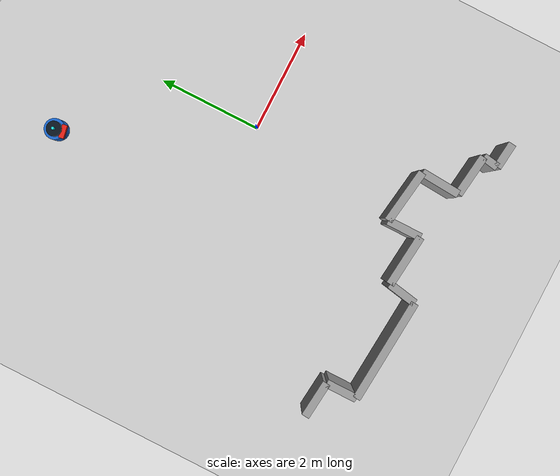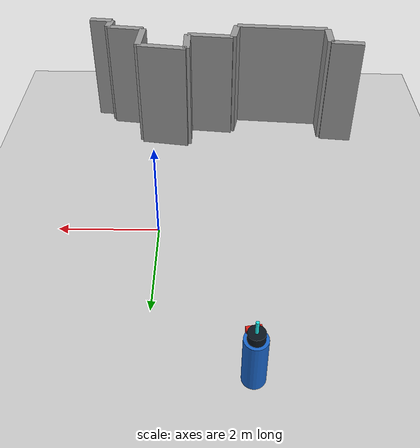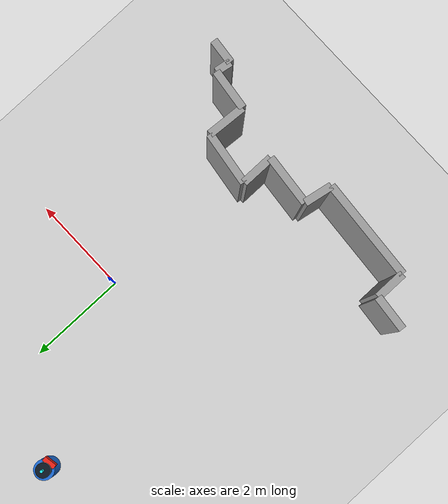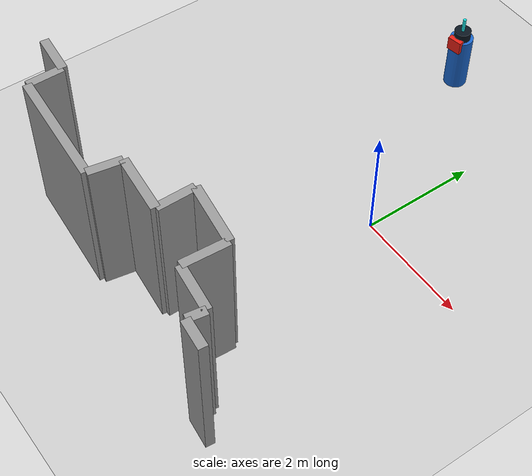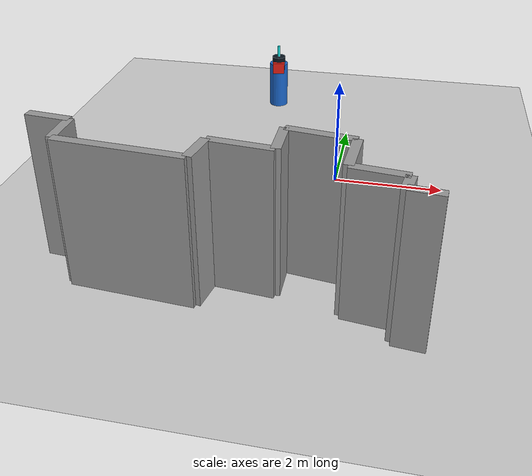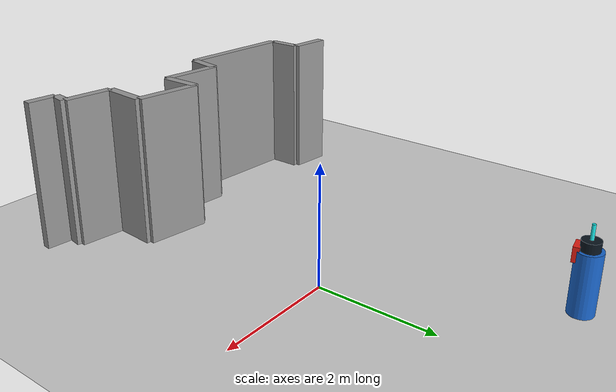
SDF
<sdf version="1.7">
 <world name="default">
  <plugin name="socnav_plugin" filename="libSocNavPlugin.so">
   <robot_name>robot</robot_name>
   <trajectory_file>/home/hunav_gz_classic_ws/SocNav3_trajectories/src3/000001087.json</trajectory_file>
   <human_slots>3</human_slots>
  </plugin>
  <light name="sun" type="directional">
   <pose>0 0 10 0 -0 0</pose>
   <diffuse>0.8 0.8 0.8 1</diffuse>
   <specular>0.2 0.2 0.2 1</specular>
   <attenuation>
    <range>1000</range>
    <constant>0.9</constant>
    <linear>0.01</linear>
    <quadratic>0.001</quadratic>
   </attenuation>
   <direction>-0.5 0.1 -0.9</direction>
   <spot><inner_angle>0</inner_angle><outer_angle>0</outer_angle><falloff>0</falloff></spot>
  </light>
  <model name="ground_plane">
   <static>1</static>
   <link name="link">
    <collision name="collision">
     <geometry><plane><normal>0 0 1</normal><size>100 100</size></plane></geometry>
     <surface><friction><ode><mu>100</mu><mu2>50</mu2></ode></friction></surface>
    </collision>
    <visual name="visual">
     <cast_shadows>0</cast_shadows>
     <geometry><plane><normal>0 0 1</normal><size>100 100</size></plane></geometry>
     <material>
      <script><uri>file://media/materials/scripts/kitchen.material</uri><name>Kitchen/CounterTop_H</name></script>
     </material>
    </visual>
   </link>
  </model>
  <gravity>0 0 -9.8</gravity>
  <magnetic_field>6e-06 2.3e-05 -4.2e-05</magnetic_field>
  <atmosphere type="adiabatic"/>
  <physics type="ode">
   <max_step_size>0.001</max_step_size>
   <real_time_factor>1</real_time_factor>
   <real_time_update_rate>1000</real_time_update_rate>
  </physics>
  <scene><ambient>0.4 0.4 0.4 1</ambient><background>0.7 0.7 0.7 1</background><shadows>1</shadows></scene>
  <audio><device>default</device></audio>
  <spherical_coordinates>
   <surface_model>EARTH_WGS84</surface_model>
   <latitude_deg>0</latitude_deg>
   <longitude_deg>0</longitude_deg>
   <elevation>0</elevation>
   <heading_deg>0</heading_deg>
  </spherical_coordinates>
  <model name="robot">
   <pose>-1.751194847550667 3.312082154825214 0.5 0 0 -1.4043498034513395</pose>
   <link name="link">
    <collision name="collision">
     <geometry><cylinder><radius>0.2</radius><length>1.0</length></cylinder></geometry>
    </collision>
    <visual name="visual">
     <geometry><cylinder><radius>0.2</radius><length>1.0</length></cylinder></geometry>
     <material><ambient>0.1 0.4 0.8 1</ambient><diffuse>0.1 0.4 0.8 1</diffuse></material>
    </visual>
    <visual name="robot_top">
     <pose>0 0 0.58 0 0 0</pose>
     <geometry><cylinder><radius>0.144</radius><length>0.16</length></cylinder></geometry>
     <material><ambient>0.04 0.08 0.12 1</ambient><diffuse>0.04 0.08 0.12 1</diffuse></material>
    </visual>
    <visual name="robot_front">
     <pose>0.168 0 0.44 0 0 0</pose>
     <geometry><box><size>0.096 0.256 0.24</size></box></geometry>
     <material><ambient>0.9 0.12 0.08 1</ambient><diffuse>0.9 0.12 0.08 1</diffuse></material>
    </visual>
    <visual name="robot_sensor">
     <pose>0 0 0.78 0 0 0</pose>
     <geometry><cylinder><radius>0.028000000000000004</radius><length>0.24</length></cylinder></geometry>
     <material><ambient>0.1 0.9 0.9 1</ambient><diffuse>0.1 0.9 0.9 1</diffuse></material>
    </visual>
   </link>
  </model>
  <model name="simple_world_test">
   <link name="Wall_0">
    <collision name="Wall_0_Collision">
     <geometry><box><size>0.7076985437023052 0.15 2.5</size></box></geometry>
     <pose>0 0 1.25 0 -0 0</pose>
    </collision>
    <visual name="Wall_0_Visual">
     <pose>0 0 1.25 0 -0 0</pose>
     <geometry><box><size>0.7076985437023052 0.15 2.5</size></box></geometry>
     <material>
      <script><uri>file://media/materials/scripts/gazebo.material</uri><name>Gazebo/Grey</name></script>
      <ambient>1 1 1 1</ambient>
     </material>
     <meta><layer>0</layer></meta>
    </visual>
    <pose>-3.9153914659265596 -3.2307504617910503 0 0 -0 -0.0996686524911619</pose>
   </link>
   <link name="Wall_1">
    <collision name="Wall_1_Collision">
     <geometry><box><size>0.6000000000000001 0.15 2.5</size></box></geometry>
     <pose>0 0 1.25 0 -0 0</pose>
    </collision>
    <visual name="Wall_1_Visual">
     <pose>0 0 1.25 0 -0 0</pose>
     <geometry><box><size>0.6000000000000001 0.15 2.5</size></box></geometry>
     <material>
      <script><uri>file://media/materials/scripts/gazebo.material</uri><name>Gazebo/Grey</name></script>
      <ambient>1 1 1 1</ambient>
     </material>
     <meta><layer>0</layer></meta>
    </visual>
    <pose>-3.563298280705938 -3.5659597803131122 0 0 -0 -1.5707963267948966</pose>
   </link>
   <link name="Wall_2">
    <collision name="Wall_2_Collision">
     <geometry><box><size>2.005617112013158 0.15 2.5</size></box></geometry>
     <pose>0 0 1.25 0 -0 0</pose>
    </collision>
    <visual name="Wall_2_Visual">
     <pose>0 0 1.25 0 -0 0</pose>
     <geometry><box><size>2.005617112013158 0.15 2.5</size></box></geometry>
     <material>
      <script><uri>file://media/materials/scripts/gazebo.material</uri><name>Gazebo/Grey</name></script>
      <ambient>1 1 1 1</ambient>
     </material>
     <meta><layer>0</layer></meta>
    </visual>
    <pose>-2.563298280705938 -3.9409597803131122 0 0 -0 -0.07485984771076681</pose>
   </link>
   <link name="Wall_3">
    <collision name="Wall_3_Collision">
     <geometry><box><size>0.5590169943749472 0.15 2.5</size></box></geometry>
     <pose>0 0 1.25 0 -0 0</pose>
    </collision>
    <visual name="Wall_3_Visual">
     <pose>0 0 1.25 0 -0 0</pose>
     <geometry><box><size>0.5590169943749472 0.15 2.5</size></box></geometry>
     <material>
      <script><uri>file://media/materials/scripts/gazebo.material</uri><name>Gazebo/Grey</name></script>
      <ambient>1 1 1 1</ambient>
     </material>
     <meta><layer>0</layer></meta>
    </visual>
    <pose>-1.5132982807059383 -3.7409597803131125 0 0 -0 1.390942827002419</pose>
   </link>
   <link name="Wall_4">
    <collision name="Wall_4_Collision">
     <geometry><box><size>1.004987562112089 0.15 2.5</size></box></geometry>
     <pose>0 0 1.25 0 -0 0</pose>
    </collision>
    <visual name="Wall_4_Visual">
     <pose>0 0 1.25 0 -0 0</pose>
     <geometry><box><size>1.004987562112089 0.15 2.5</size></box></geometry>
     <material>
      <script><uri>file://media/materials/scripts/gazebo.material</uri><name>Gazebo/Grey</name></script>
      <ambient>1 1 1 1</ambient>
     </material>
     <meta><layer>0</layer></meta>
    </visual>
    <pose>-0.9632982807059385 -3.5159597803131124 0 0 -0 -0.09966865249116212</pose>
   </link>
   <link name="Wall_5">
    <collision name="Wall_5_Collision">
     <geometry><box><size>0.6499999999999999 0.15 2.5</size></box></geometry>
     <pose>0 0 1.25 0 -0 0</pose>
    </collision>
    <visual name="Wall_5_Visual">
     <pose>0 0 1.25 0 -0 0</pose>
     <geometry><box><size>0.6499999999999999 0.15 2.5</size></box></geometry>
     <material>
      <script><uri>file://media/materials/scripts/gazebo.material</uri><name>Gazebo/Grey</name></script>
      <ambient>1 1 1 1</ambient>
     </material>
     <meta><layer>0</layer></meta>
    </visual>
    <pose>-0.4632982807059385 -3.240959780313113 0 0 -0 1.5707963267948966</pose>
   </link>
   <link name="Wall_6">
    <collision name="Wall_6_Collision">
     <geometry><box><size>1.0606601717798214 0.15 2.5</size></box></geometry>
     <pose>0 0 1.25 0 -0 0</pose>
    </collision>
    <visual name="Wall_6_Visual">
     <pose>0 0 1.25 0 -0 0</pose>
     <geometry><box><size>1.0606601717798214 0.15 2.5</size></box></geometry>
     <material>
      <script><uri>file://media/materials/scripts/gazebo.material</uri><name>Gazebo/Grey</name></script>
      <ambient>1 1 1 1</ambient>
     </material>
     <meta><layer>0</layer></meta>
    </visual>
    <pose>0.06170171929406165 -2.990959780313113 0 0 -0 -0.1418970546041638</pose>
   </link>
   <link name="Wall_7">
    <collision name="Wall_7_Collision">
     <geometry><box><size>0.7516648189186454 0.15 2.5</size></box></geometry>
     <pose>0 0 1.25 0 -0 0</pose>
    </collision>
    <visual name="Wall_7_Visual">
     <pose>0 0 1.25 0 -0 0</pose>
     <geometry><box><size>0.7516648189186454 0.15 2.5</size></box></geometry>
     <material>
      <script><uri>file://media/materials/scripts/gazebo.material</uri><name>Gazebo/Grey</name></script>
      <ambient>1 1 1 1</ambient>
     </material>
     <meta><layer>0</layer></meta>
    </visual>
    <pose>0.5617017192940618 -3.4409597803131127 0 0 -0 -1.6373644905707205</pose>
   </link>
   <link name="Wall_8">
    <collision name="Wall_8_Collision">
     <geometry><box><size>0.806225774829855 0.15 2.5</size></box></geometry>
     <pose>0 0 1.25 0 -0 0</pose>
    </collision>
    <visual name="Wall_8_Visual">
     <pose>0 0 1.25 0 -0 0</pose>
     <geometry><box><size>0.806225774829855 0.15 2.5</size></box></geometry>
     <material>
      <script><uri>file://media/materials/scripts/gazebo.material</uri><name>Gazebo/Grey</name></script>
      <ambient>1 1 1 1</ambient>
     </material>
     <meta><layer>0</layer></meta>
    </visual>
    <pose>0.9367017192940618 -3.865959780313113 0 0 -0 -0.12435499454676154</pose>
   </link>
   <link name="Wall_9">
    <collision name="Wall_9_Collision">
     <geometry><box><size>0.30413812651491084 0.15 2.5</size></box></geometry>
     <pose>0 0 1.25 0 -0 0</pose>
    </collision>
    <visual name="Wall_9_Visual">
     <pose>0 0 1.25 0 -0 0</pose>
     <geometry><box><size>0.30413812651491084 0.15 2.5</size></box></geometry>
     <material>
      <script><uri>file://media/materials/scripts/gazebo.material</uri><name>Gazebo/Grey</name></script>
      <ambient>1 1 1 1</ambient>
     </material>
     <meta><layer>0</layer></meta>
    </visual>
    <pose>1.3117017192940619 -4.065959780313113 0 0 -0 -1.7359450042095237</pose>
   </link>
   <link name="Wall_10">
    <collision name="Wall_10_Collision">
     <geometry><box><size>0.49585091330517556 0.15 2.5</size></box></geometry>
     <pose>0 0 1.25 0 -0 0</pose>
    </collision>
    <visual name="Wall_10_Visual">
     <pose>0 0 1.25 0 -0 0</pose>
     <geometry><box><size>0.49585091330517556 0.15 2.5</size></box></geometry>
     <material>
      <script><uri>file://media/materials/scripts/gazebo.material</uri><name>Gazebo/Grey</name></script>
      <ambient>1 1 1 1</ambient>
     </material>
     <meta><layer>0</layer></meta>
    </visual>
    <pose>1.5332850297142468 -4.241722215730147 0 0 -0 -0.1040999381095994</pose>
   </link>
   <static>1</static>
  </model>
 </world>
</sdf>
